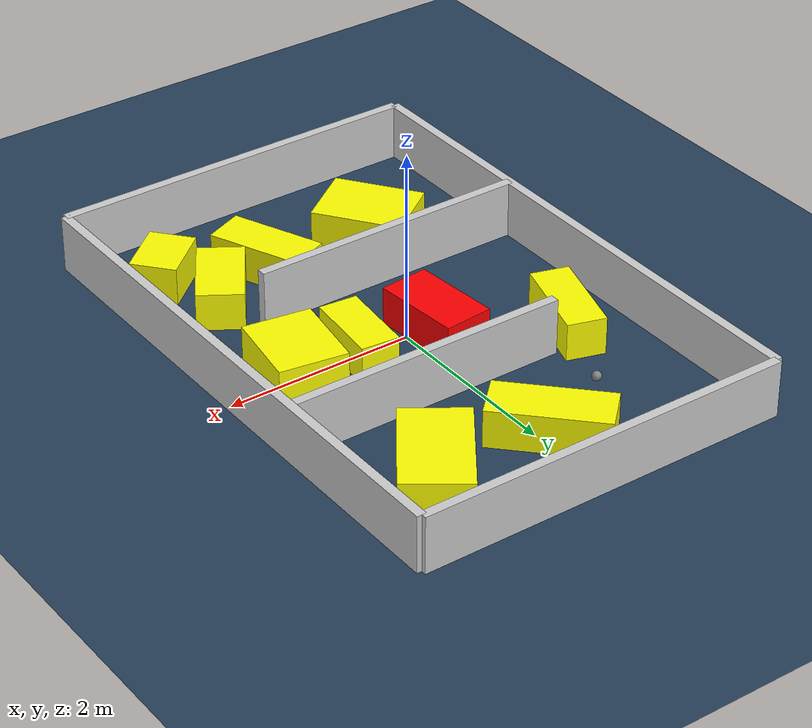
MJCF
<?xml version="1.0" ?>
<mujoco model="generated_environment">
  <option timestep="0.01" integrator="RK4" cone="elliptic"/>
  <default>
    <geom density="1"/>
  </default>
  <asset>
    <texture builtin="gradient" height="3072" rgb1="0.3 0.5 0.7" rgb2="0 0 0" type="skybox" width="512"/>
    <texture builtin="checker" height="300" mark="edge" markrgb="0.8 0.8 0.8" name="groundplane" rgb1="0.2 0.3 0.4" rgb2="0.1 0.2 0.3" type="2d" width="300"/>
    <material name="groundplane" reflectance="0.2" texrepeat="5 5" texture="groundplane" texuniform="true"/>
    <material name="robot" rgba="0.0 1.0 0.0 1"/>
  </asset>
  <worldbody>
    <light dir="0 0 -1" directional="true" pos="0 0 1.5"/>
    <geom condim="4" friction="1.0 0.005 0.001" material="groundplane" name="floor" size="0 0 0.05" type="plane"/>
    <body name="walls">
      <geom name="wall_1" condim="4" pos="-2.0 0.0 0.3" rgba="0.800000011920929 0.800000011920929 0.800000011920929 1.0" size="0.05 3.0 0.3" type="box"/>
      <geom name="wall_2" condim="4" pos="2.0 0.0 0.3" rgba="0.800000011920929 0.800000011920929 0.800000011920929 1.0" size="0.05 3.0 0.3" type="box"/>
      <geom name="wall_3" condim="4" pos="0.0 -3.0 0.3" rgba="0.800000011920929 0.800000011920929 0.800000011920929 1.0" size="2.0 0.05 0.3" type="box"/>
      <geom name="wall_4" condim="4" pos="0.0 3.0 0.3" rgba="0.800000011920929 0.800000011920929 0.800000011920929 1.0" size="2.0 0.05 0.3" type="box"/>
      <geom name="wall_5" condim="4" pos="-0.5 -1.0 0.3" rgba="0.800000011920929 0.800000011920929 0.800000011920929 1.0" size="1.5 0.05 0.3" type="box"/>
      <geom name="wall_6" condim="4" pos="0.5 1.0 0.3" rgba="0.800000011920929 0.800000011920929 0.800000011920929 1.0" size="1.5 0.05 0.3" type="box"/>
    </body>
    <body name="robot">
      <joint name="joint_x" type="slide" pos="0 0 0" axis="1 0 0"/>
      <joint name="joint_y" type="slide" pos="0 0 0" axis="0 1 0"/>
      <geom name="robot" type="sphere" pos="-0.8759721624659048 1.796267770000512 0.2" size="0.05" mass="5." friction="1.0 0.005 0.0001" condim="4"/>
      <site name="sensor_ball"/>
    </body>
    <body name="obstacle_1_movable">
      <geom name="obstacle_1_movable" condim="4" pos="1.147683672123202 2.037860763502016 0.2" euler="0 0 324.64795396740277" friction="1.0 0.005 0.001" rgba="1 1 0 1" size="0.3476467968192482 0.5749649401171385 0.2" type="box" mass="0.1"/>
      <joint type="free"/>
    </body>
    <body name="obstacle_2_movable">
      <geom name="obstacle_2_movable" condim="4" pos="0.564209910511059 0.014001267393299877 0.2" euler="0 0 354.38639416041644" friction="1.0 0.005 0.001" rgba="1 1 0 1" size="0.2015963006280051 0.4177087390955525 0.2" type="box" mass="0.1"/>
      <joint type="free"/>
    </body>
    <body name="obstacle_3_movable">
      <geom name="obstacle_3_movable" condim="4" pos="-0.7813406076433289 -1.7586314566545544 0.2" euler="0 0 305.8390907758869" friction="1.0 0.005 0.001" rgba="1 1 0 1" size="0.4806725771801381 0.3706683972783156 0.2" type="box" mass="0.1"/>
      <joint type="free"/>
    </body>
    <body name="obstacle_4_movable">
      <geom name="obstacle_4_movable" condim="4" pos="0.449452887053406 -1.7627627049703962 0.2" euler="0 0 202.8815870696461" friction="1.0 0.005 0.001" rgba="1 1 0 1" size="0.22342757183201006 0.5142661009706935 0.2" type="box" mass="0.1"/>
      <joint type="free"/>
    </body>
    <body name="obstacle_5_movable">
      <geom name="obstacle_5_movable" condim="4" pos="1.1352584792797642 -1.5243282221565666 0.2" euler="0 0 57.237182970361175" friction="1.0 0.005 0.001" rgba="1 1 0 1" size="0.44046584004604167 0.24007676128173205 0.2" type="box" mass="0.1"/>
      <joint type="free"/>
    </body>
    <body name="obstacle_6_movable">
      <geom name="obstacle_6_movable" condim="4" pos="-1.328002955155887 0.7978115000723927 0.2" euler="0 0 163.23084003429517" friction="1.0 0.005 0.001" rgba="1 1 0 1" size="0.20387075920339637 0.4890135849332096 0.2" type="box" mass="0.1"/>
      <joint type="free"/>
    </body>
    <body name="obstacle_7_movable">
      <geom name="obstacle_7_movable" condim="4" pos="-0.09235247143942282 2.113721326234237 0.2" euler="0 0 134.1853972135547" friction="1.0 0.005 0.001" rgba="1 1 0 1" size="0.5944357829877556 0.24834153824128752 0.2" type="box" mass="0.1"/>
      <joint type="free"/>
    </body>
    <body name="obstacle_8_movable">
      <geom name="obstacle_8_movable" condim="4" pos="1.3935487005970424 -2.17081043595616 0.2" euler="0 0 40.09993686436219" friction="1.0 0.005 0.001" rgba="1 1 0 1" size="0.31584434783353305 0.2422288658544329 0.2" type="box" mass="0.1"/>
      <joint type="free"/>
    </body>
    <body name="obstacle_9_static">
      <geom name="obstacle_9_static" condim="4" pos="-0.2707112802710503 0.1025489164730069 0.2" euler="0 0 185.22354148634378" friction="1.0 0.005 0.001" rgba="1 0 0 1" size="0.26257323609103983 0.4734253938029207 0.2" type="box"/>
    </body>
    <body name="obstacle_10_movable">
      <geom name="obstacle_10_movable" condim="4" pos="1.2237477192464237 -0.0827016709779751 0.2" euler="0 0 261.0285113114412" friction="1.0 0.005 0.001" rgba="1 1 0 1" size="0.4286456074926428 0.35809881686628225 0.2" type="box" mass="0.1"/>
      <joint type="free"/>
    </body>
  </worldbody>
  <actuator>
    <motor name="actuator_x" joint="joint_x" gear="1" ctrlrange="-1 1"/>
    <motor name="actuator_y" joint="joint_y" gear="1" ctrlrange="-1 1"/>
  </actuator>
</mujoco>
